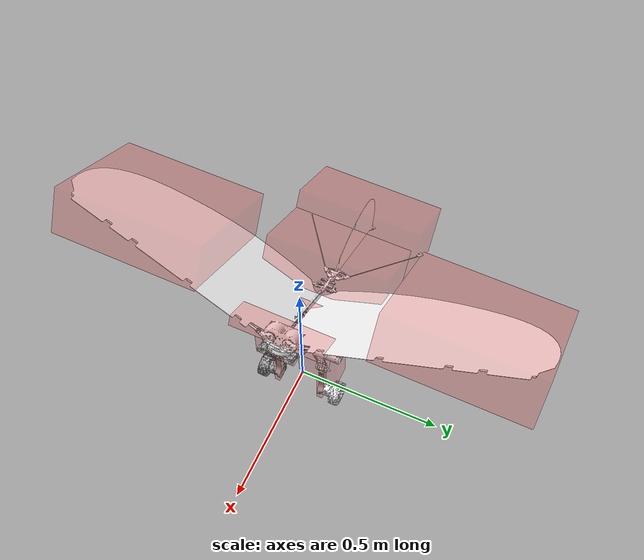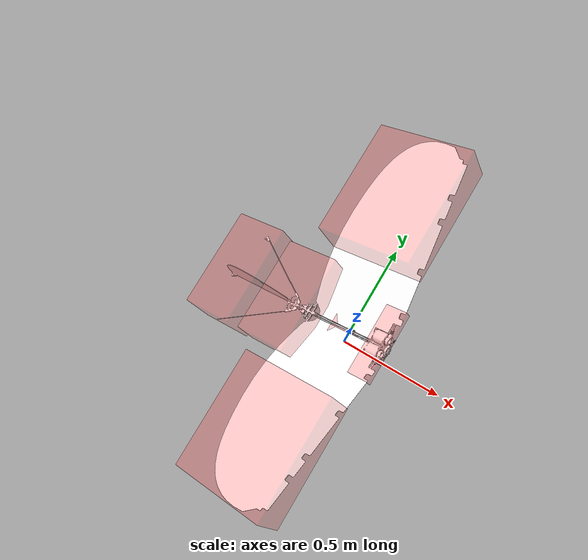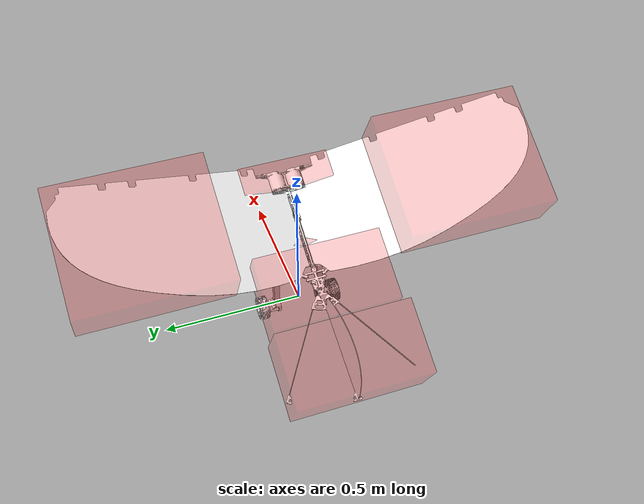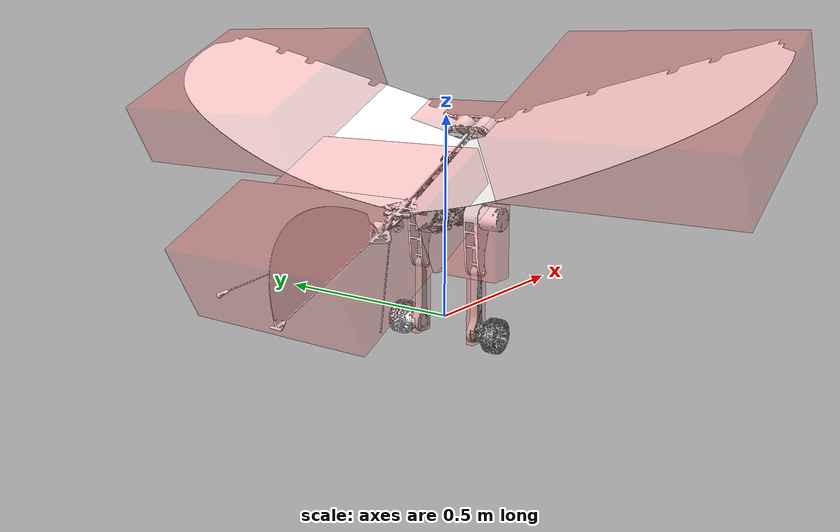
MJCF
<mujoco model="we3_dr002_contract">
  <compiler angle="radian" meshdir="." autolimits="true" />
  <option timestep="0.0025" gravity="0 0 -9.81" integrator="Euler" />
  <asset>
    <mesh name="base_link" file="meshes_lod/base_link.STL" />
    <mesh name="left_thigh_link" file="meshes_lod/left_thigh_link.STL" />
    <mesh name="left_calf_link" file="meshes_lod/left_calf_link.STL" />
    <mesh name="left_foot_link" file="meshes_lod/left_foot_link.STL" />
    <mesh name="right_thigh_link" file="meshes_lod/right_thigh_link.STL" />
    <mesh name="right_calf_link" file="meshes_lod/right_calf_link.STL" />
    <mesh name="right_foot_link" file="meshes_lod/right_foot_link.STL" />
    <mesh name="ancestor_dante" file="meshes_lod/ancestor_dante.STL" />
    <material name="base_link_mat" rgba="0.7529 0.7529 0.7529 1" specular="0" />
    <material name="left_thigh_joint_mat" rgba="1 1 1 1" specular="0" />
    <material name="left_calf_joint_mat" rgba="0.7765 0.7569 0.7372 1" specular="0" />
    <material name="left_foot_joint_mat" rgba="1 1 1 1" specular="0" />
    <material name="right_thigh_joint_mat" rgba="1 1 1 1" specular="0" />
    <material name="right_calf_joint_mat" rgba="0.7765 0.7569 0.7372 1" specular="0" />
    <material name="right_foot_joint_mat" rgba="0.6667 0.6667 0.6667 1" specular="0" />
    <material name="ancestor_dante_mat" rgba="1 1 1 1" specular="0" />
  </asset>
  <worldbody>
    <body name="base_link" pos="0 0 0.30">
      <inertial pos="0.057007 0 0.073194" mass="1.5782" fullinertia="0.014072 0.023394 0.014839 0 -0.010138 0" />
      <freejoint />
      <site name="imu" pos="0 0 0" />
      <site name="push_site" pos="0.006 0 0.066" />
      <site name="base_link_touch_site" type="box" pos="-0.019765003 0 -0.024499988" size="0.063984999 0.059149999 0.075000012" rgba="1 0 0 0.15" />
      <geom pos="0 0 0" group="1" contype="0" conaffinity="0" material="base_link_mat" type="mesh" mesh="base_link" name="base_link_visual" />
      <geom name="base_link_collision" pos="-0.019765003 0 -0.024499988" rgba="0.9373 0.2667 0.2667 0.35" group="3" contype="1" conaffinity="1" type="box" size="0.063984999 0.059149999 0.075000012" />
      <body name="left_thigh_joint" pos="0.01425 0.05385 -0.0415" quat="0.500398 -0.4996017 0.500398 0.4996017">
        <joint name="left_thigh_joint" type="hinge" axis="0 0 1" limited="true" range="-0.43 1.57" damping="0" frictionloss="0" armature="0.0076577" />
        <inertial pos="0.0103941 0.0002986 0.0341752" mass="0.6449579" fullinertia="0.00105519 0.00171869 0.00074863 -0.00001196 0.00003674 0.00000559" />
        <site name="left_thigh_touch_site" type="box" pos="0.057495112 -0.000012705 0.027400002" size="0.088995106 0.031453953 0.071400005" rgba="1 0 0 0.15" />
        <geom pos="0 0 0" group="1" contype="0" conaffinity="0" material="left_thigh_joint_mat" type="mesh" mesh="left_thigh_link" name="left_thigh_joint_visual" />
        <geom name="left_thigh_joint_collision" pos="0.057495112 -0.000012705 0.027400002" rgba="0.9373 0.2667 0.2667 0.35" group="3" contype="1" conaffinity="1" type="box" size="0.088995105 0.031453954 0.071400002" />
        <body name="left_calf_joint" pos="0.136 0 0.0283">
          <joint name="left_calf_joint" type="hinge" axis="0 0 1" limited="true" range="-2.669 -0.17" damping="0" frictionloss="0" armature="0.01738699" />
          <inertial pos="0.0649122 -0.0004084 -0.0011213" mass="0.0577115" fullinertia="0.00000775 0.00018349 0.00018663 -0.00000221 0.00000395 0.00000002" />
          <site name="left_calf_touch_site" type="box" pos="0.078361970 0 0" size="0.098638034 0.027000001 0.010000000" rgba="1 0 0 0.15" />
          <geom pos="0 0 0" group="1" contype="0" conaffinity="0" material="left_calf_joint_mat" type="mesh" mesh="left_calf_link" name="left_calf_joint_visual" />
          <geom name="left_calf_joint_collision" pos="0.078361970 0 0" rgba="0.9373 0.2667 0.2667 0.35" group="3" contype="1" conaffinity="1" type="box" size="0.098638031 0.027000001 0.010000000" />
          <body name="left_foot_joint" pos="0.15 0 0.037">
            <joint name="left_foot_joint" type="hinge" axis="0 0 1" damping="0" frictionloss="0" armature="0.0008" />
            <inertial pos="-0.0000704 0 -0.0049729" mass="0.31889" fullinertia="0.00018411 0.00018414 0.00012941 0.00000002 -0.00000032 -0.00000003" />
            <geom pos="0 0 0" group="1" contype="0" conaffinity="0" material="left_foot_joint_mat" type="mesh" mesh="left_foot_link" name="left_foot_joint_visual" />
            <geom name="left_foot_joint_collision" pos="0 0 0.017285" rgba="0.9373 0.2667 0.2667 0.35" group="3" contype="1" conaffinity="1" type="cylinder" size="0.0425 0.017285" />
          </body>
        </body>
      </body>
      <body name="right_thigh_joint" pos="0.01425 -0.05385 -0.0415" quat="0.5 0.5 0.5 -0.5">
        <joint name="right_thigh_joint" type="hinge" axis="0 0 -1" limited="true" range="-0.43 1.57" damping="0" frictionloss="0" armature="0.0076577" />
        <inertial pos="0.010179 -0.0000807 0.0342345" mass="0.6449579" fullinertia="0.0010551 0.00172079 0.00075154 0.000012 0.00003643 -0.00000479" />
        <site name="right_thigh_touch_site" type="box" pos="0.057495112 -0.000012702 0.027400002" size="0.088995106 0.031453959 0.071400005" rgba="1 0 0 0.15" />
        <geom pos="0 0 0" group="1" contype="0" conaffinity="0" material="right_thigh_joint_mat" type="mesh" mesh="right_thigh_link" name="right_thigh_joint_visual" />
        <geom name="right_thigh_joint_collision" pos="0.057495112 -0.000012701 0.027400002" rgba="0.9373 0.2667 0.2667 0.35" group="3" contype="1" conaffinity="1" type="box" size="0.088995105 0.031453958 0.071400002" />
        <body name="right_calf_joint" pos="0.136 0 0.0283">
          <joint name="right_calf_joint" type="hinge" axis="0 0 -1" limited="true" range="-2.669 -0.17" damping="0" frictionloss="0" armature="0.01738699" />
          <inertial pos="0.0649122 0.0004081 -0.0011212" mass="0.0577115" fullinertia="0.00000775 0.00018348 0.00018663 0.00000222 0.00000395 -0.00000002" />
          <site name="right_calf_touch_site" type="box" pos="0.078361972 0 0" size="0.098638032 0.027000001 0.010000000" rgba="1 0 0 0.15" />
          <geom pos="0 0 0" group="1" contype="0" conaffinity="0" material="right_calf_joint_mat" type="mesh" mesh="right_calf_link" name="right_calf_joint_visual" />
          <geom name="right_calf_joint_collision" pos="0.078361970 0 0" rgba="0.9373 0.2667 0.2667 0.35" group="3" contype="1" conaffinity="1" type="box" size="0.098638031 0.027000001 0.010000000" />
          <body name="right_foot_joint" pos="0.15 0 0.037">
            <joint name="right_foot_joint" type="hinge" axis="0 0 -1" damping="0" frictionloss="0" armature="0.0008" />
            <inertial pos="-0.0000652 0 -0.0049729" mass="0.31889" fullinertia="0.00018411 0.00018414 0.00012941 0 -0.00000039 -0.00000003" />
            <geom pos="0 0 0" group="1" contype="0" conaffinity="0" material="right_foot_joint_mat" type="mesh" mesh="right_foot_link" name="right_foot_joint_visual" />
            <geom name="right_foot_joint_collision" pos="0 0 0.017285" rgba="0.9373 0.2667 0.2667 0.35" group="3" contype="1" conaffinity="1" type="cylinder" size="0.0425 0.017285" />
          </body>
        </body>
      </body>
      <body name="ancestor_dante" pos="0.14356 -0.0000251 0.11533" quat="0.9702895 -0.0035509 -0.2419192 -0.0008853">
        <inertial pos="-0.0624828 -0.0004031 0.0653532" mass="1.1604342" fullinertia="0.05358667 0.02849022 0.07355748 0.0001083 0.00258776 -0.00032249" />
        <geom pos="0 0 0" group="1" contype="0" conaffinity="0" material="ancestor_dante_mat" type="mesh" mesh="ancestor_dante" name="ancestor_dante_visual" />
        <geom pos="0 0 0" rgba="0.9373 0.2667 0.2667 0.15" group="3" contype="0" conaffinity="0" type="mesh" mesh="ancestor_dante" name="ancestor_dante_collision_disabled" />
        <geom name="ancestor_dante_upper_left_collision" pos="-0.151459 0.543330 0.211002" rgba="0.9373 0.2667 0.2667 0.25" group="3" contype="1" conaffinity="1" type="box" size="0.216909 0.258213 0.086123" />
        <geom name="ancestor_dante_upper_right_collision" pos="-0.151459 -0.546312 0.202855" rgba="0.9373 0.2667 0.2667 0.25" group="3" contype="1" conaffinity="1" type="box" size="0.216909 0.259386 0.082554" />
        <geom name="ancestor_dante_tail_rear_collision" pos="-0.673367 0.001596 0.161864" rgba="0.9373 0.2667 0.2667 0.25" group="3" contype="1" conaffinity="1" type="box" size="0.124354 0.226574 0.089963" />
        <geom name="ancestor_dante_tail_mid_collision" pos="-0.407304 -0.000723 0.123556" rgba="0.9373 0.2667 0.2667 0.25" group="3" contype="1" conaffinity="1" type="box" size="0.122704 0.216406 0.070659" />
        <geom name="ancestor_dante_front_center_collision" pos="0.017225 -0.000589 0.070951" rgba="0.9373 0.2667 0.2667 0.25" group="3" contype="1" conaffinity="1" type="box" size="0.048225 0.158524 0.018054" />
        <site name="ancestor_dante_upper_left_touch_site" type="box" pos="-0.151459 0.543330 0.211002" size="0.216909 0.258213 0.086123" rgba="1 0 0 0.15" />
        <site name="ancestor_dante_upper_right_touch_site" type="box" pos="-0.151459 -0.546312 0.202855" size="0.216909 0.259386 0.082554" rgba="1 0 0 0.15" />
        <site name="ancestor_dante_tail_rear_touch_site" type="box" pos="-0.673367 0.001596 0.161864" size="0.124354 0.226574 0.089963" rgba="1 0 0 0.15" />
        <site name="ancestor_dante_tail_mid_touch_site" type="box" pos="-0.407304 -0.000723 0.123556" size="0.122704 0.216406 0.070659" rgba="1 0 0 0.15" />
        <site name="ancestor_dante_front_center_touch_site" type="box" pos="0.017225 -0.000589 0.070951" size="0.048225 0.158524 0.018054" rgba="1 0 0 0.15" />
      </body>
    </body>
  </worldbody>
  <actuator>
    <motor name="left_thigh_motor" joint="left_thigh_joint" ctrlrange="-5.5 5.5" />
    <motor name="left_calf_motor" joint="left_calf_joint" ctrlrange="-14 14" />
    <motor name="left_foot_motor" joint="left_foot_joint" ctrlrange="-5.5 5.5" />
    <motor name="right_thigh_motor" joint="right_thigh_joint" ctrlrange="-5.5 5.5" />
    <motor name="right_calf_motor" joint="right_calf_joint" ctrlrange="-14 14" />
    <motor name="right_foot_motor" joint="right_foot_joint" ctrlrange="-5.5 5.5" />
  </actuator>
  <sensor>
    <jointpos name="left_thigh_pos" joint="left_thigh_joint" />
    <jointpos name="left_calf_pos" joint="left_calf_joint" />
    <jointpos name="left_foot_pos" joint="left_foot_joint" />
    <jointpos name="right_thigh_pos" joint="right_thigh_joint" />
    <jointpos name="right_calf_pos" joint="right_calf_joint" />
    <jointpos name="right_foot_pos" joint="right_foot_joint" />
    <jointvel name="left_thigh_vel" joint="left_thigh_joint" />
    <jointvel name="left_calf_vel" joint="left_calf_joint" />
    <jointvel name="left_foot_vel" joint="left_foot_joint" />
    <jointvel name="right_thigh_vel" joint="right_thigh_joint" />
    <jointvel name="right_calf_vel" joint="right_calf_joint" />
    <jointvel name="right_foot_vel" joint="right_foot_joint" />
    <jointactuatorfrc name="left_thigh_torque" joint="left_thigh_joint" />
    <jointactuatorfrc name="left_calf_torque" joint="left_calf_joint" />
    <jointactuatorfrc name="left_foot_torque" joint="left_foot_joint" />
    <jointactuatorfrc name="right_thigh_torque" joint="right_thigh_joint" />
    <jointactuatorfrc name="right_calf_torque" joint="right_calf_joint" />
    <jointactuatorfrc name="right_foot_torque" joint="right_foot_joint" />
    <framequat name="imu_quat" objtype="site" objname="imu" noise="0.0" />
    <gyro name="imu_gyro" site="imu" noise="0.0" />
    <accelerometer name="imu_acc" site="imu" />
    <gyro name="gyro" site="imu" />
    <velocimeter name="local_linvel" site="imu" />
    <framexaxis name="xvector" objtype="site" objname="imu" />
    <frameyaxis name="yvector" objtype="site" objname="imu" />
    <framezaxis name="upvector" objtype="site" objname="imu" />
    <touch name="base_link_touch" site="base_link_touch_site" />
    <touch name="left_thigh_touch" site="left_thigh_touch_site" />
    <touch name="left_calf_touch" site="left_calf_touch_site" />
    <touch name="right_thigh_touch" site="right_thigh_touch_site" />
    <touch name="right_calf_touch" site="right_calf_touch_site" />
    <touch name="ancestor_dante_upper_left_touch" site="ancestor_dante_upper_left_touch_site" />
    <touch name="ancestor_dante_upper_right_touch" site="ancestor_dante_upper_right_touch_site" />
    <touch name="ancestor_dante_tail_rear_touch" site="ancestor_dante_tail_rear_touch_site" />
    <touch name="ancestor_dante_tail_mid_touch" site="ancestor_dante_tail_mid_touch_site" />
    <touch name="ancestor_dante_front_center_touch" site="ancestor_dante_front_center_touch_site" />
  </sensor>
  <contact>
    <exclude body1="base_link" body2="left_thigh_joint" />
    <exclude body1="base_link" body2="left_calf_joint" />
    <exclude body1="base_link" body2="left_foot_joint" />
    <exclude body1="base_link" body2="right_thigh_joint" />
    <exclude body1="base_link" body2="right_calf_joint" />
    <exclude body1="base_link" body2="right_foot_joint" />
    <exclude body1="left_thigh_joint" body2="left_calf_joint" />
    <exclude body1="left_thigh_joint" body2="left_foot_joint" />
    <exclude body1="left_thigh_joint" body2="right_thigh_joint" />
    <exclude body1="left_thigh_joint" body2="right_calf_joint" />
    <exclude body1="left_thigh_joint" body2="right_foot_joint" />
    <exclude body1="left_calf_joint" body2="left_foot_joint" />
    <exclude body1="left_calf_joint" body2="right_thigh_joint" />
    <exclude body1="left_calf_joint" body2="right_calf_joint" />
    <exclude body1="left_calf_joint" body2="right_foot_joint" />
    <exclude body1="left_foot_joint" body2="right_thigh_joint" />
    <exclude body1="left_foot_joint" body2="right_calf_joint" />
    <exclude body1="left_foot_joint" body2="right_foot_joint" />
    <exclude body1="right_thigh_joint" body2="right_calf_joint" />
    <exclude body1="right_thigh_joint" body2="right_foot_joint" />
    <exclude body1="right_calf_joint" body2="right_foot_joint" />
    <exclude body1="base_link" body2="ancestor_dante" />
    <exclude body1="left_thigh_joint" body2="ancestor_dante" />
    <exclude body1="left_calf_joint" body2="ancestor_dante" />
    <exclude body1="left_foot_joint" body2="ancestor_dante" />
    <exclude body1="right_thigh_joint" body2="ancestor_dante" />
    <exclude body1="right_calf_joint" body2="ancestor_dante" />
    <exclude body1="right_foot_joint" body2="ancestor_dante" />
  </contact>
  <keyframe>
    <key name="home" qpos="0 0 0.30 1 0 0 0 0.8 -1.6 0 0.8 -1.6 0" ctrl="0 0 0 0 0 0" />
  </keyframe>
</mujoco>
